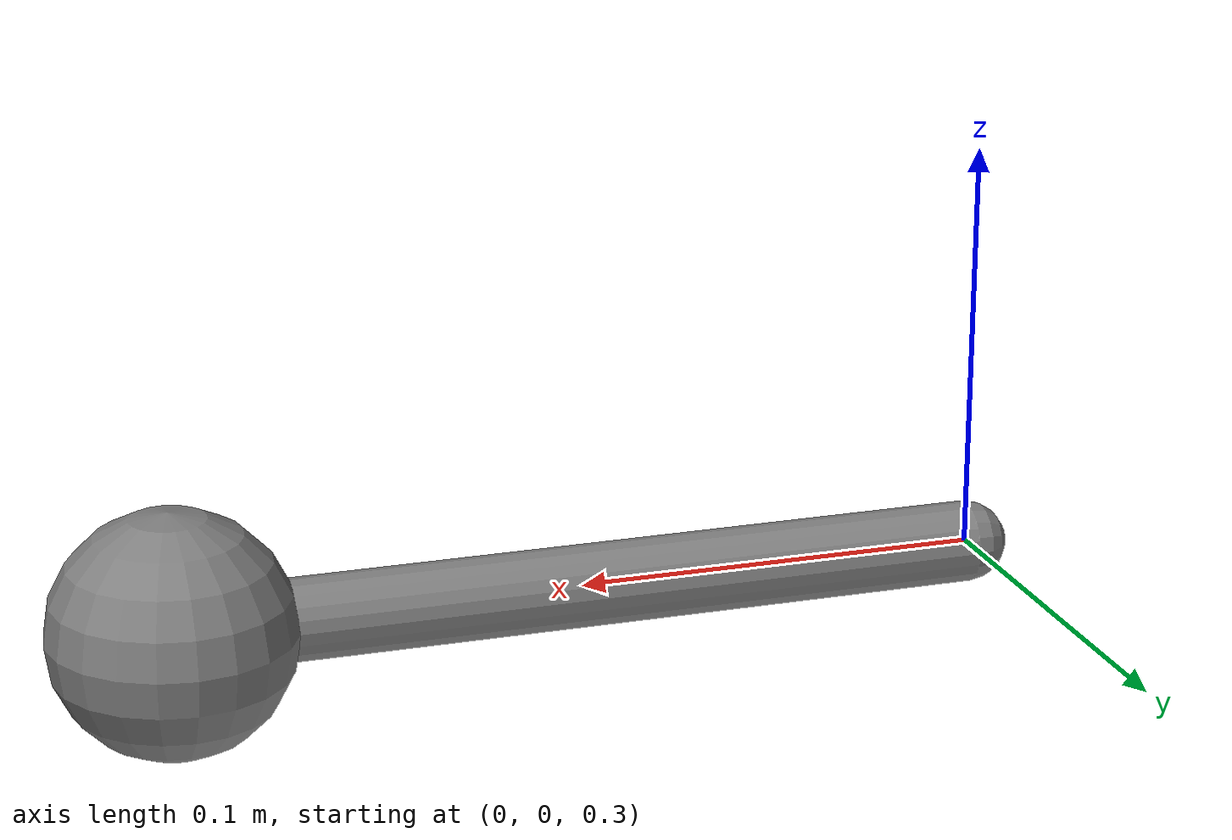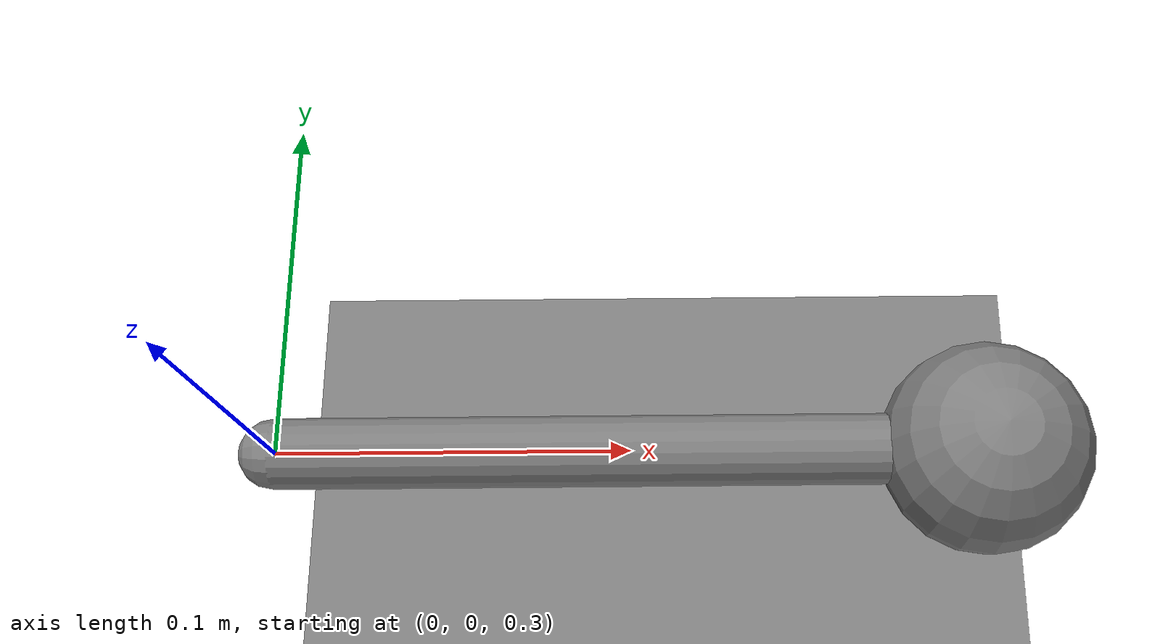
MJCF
<mujoco>
  <compiler autolimits="true"/>

  <option integrator="implicitfast"/>

  <worldbody>
    <geom type="plane" size="1 1 .01"/>
    <light pos="0 0 2"/>
    <body pos="0 0 .3">
      <joint name="hinge" damping=".01" actuatorfrcrange="-.4 .4"/>
      <geom type="capsule" size=".01" fromto="0 0 0 .2 0 0"/>
      <geom size=".03" pos=".2 0 0"/>
    </body>
  </worldbody>

  <actuator>
    <motor name="motor" joint="hinge" ctrlrange="-1 1"/>
    <damper name="damper" joint="hinge" kv="10" ctrlrange="0 1"/>
  </actuator>

  <sensor>
    <actuatorfrc name="motor" actuator="motor"/>
    <actuatorfrc name="damper" actuator="damper"/>
    <jointactuatorfrc name="hinge" joint="hinge"/>
  </sensor>
</mujoco>
